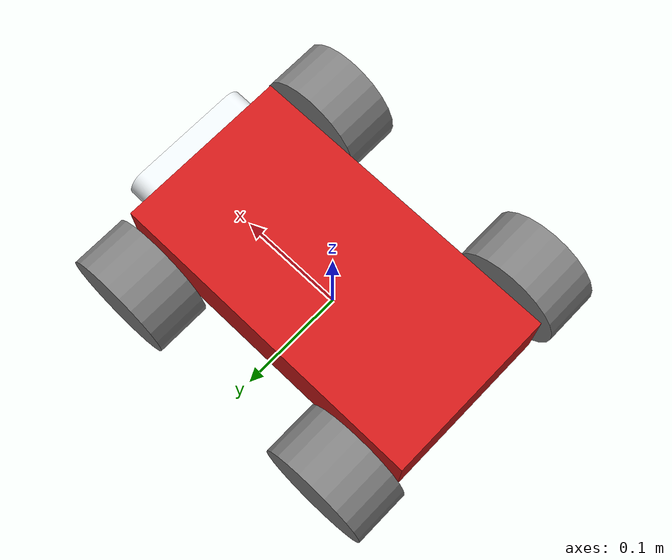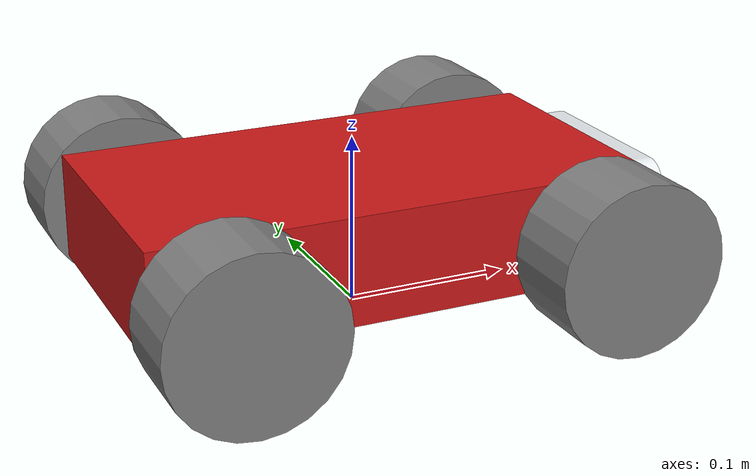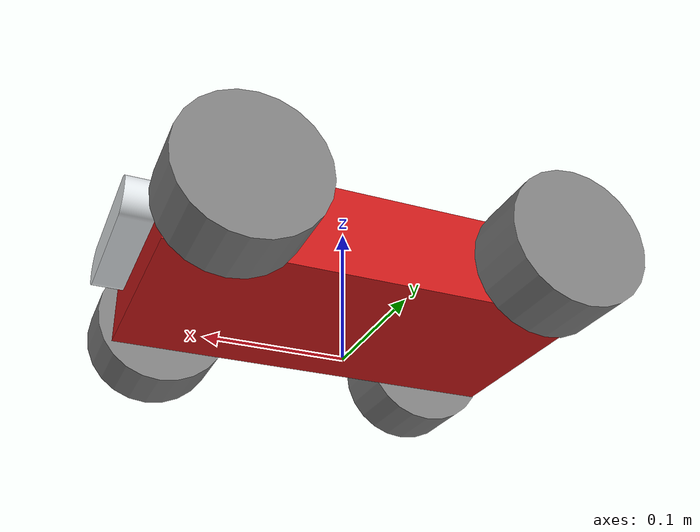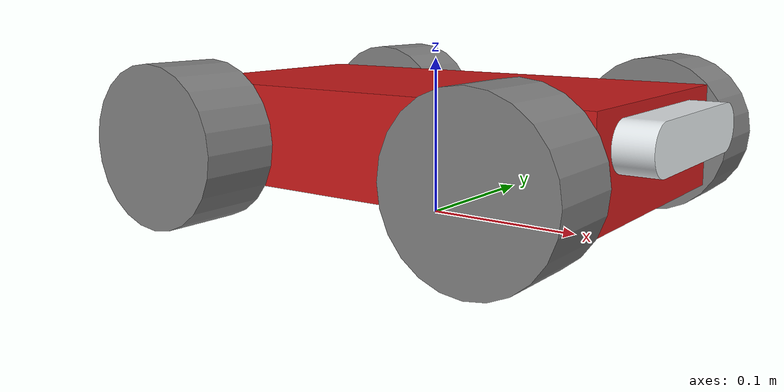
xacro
<?xml version="1.0"?>
<robot xmlns:xacro="http://ros.org/wiki/xacro" name="ackermann_chassis">

  <!-- ====== Geometry (edit as needed) ====== -->
  <xacro:property name="wheelbase"          value="0.22"/>     <!-- centre axis of front left wheel to centre axis of rear left wheel in meters (same parameter for rigth side) -->
  <xacro:property name="front_track"        value="0.2225"/> <!-- centre of front wheel to centre of right front wheel in meters -->
  <xacro:property name="rear_track"         value="0.2225"/> <!-- centre of rear wheel to centre of right rear wheel in meters -->
  <xacro:property name="front_wheel_radius" value="0.05"/>  <!-- radius of a wheel -->
  <xacro:property name="rear_wheel_radius"  value="0.05"/>  <!-- radius of a wheel -->

<!-- chassis parameters for RViz or Gazebo -->
  <xacro:property name="chassis_height"     value="0.063"/>     <!-- total height of chassis from ground to top in m -->
  <xacro:property name="clearance"          value="0.022"/>     <!-- total clearance chassis has from ground to beginning of chassis -->
  <xacro:property name="z_base"             value="0.0535"/>    <!-- clearance + chassis_height/2 -->

  <!-- Switch: fake hardware vs real Arduino bridge -->
  <xacro:arg name="use_fake_hardware" default="true"/>
  <xacro:arg name="serial_port"  default="/dev/ttyACM0"/>
  <xacro:arg name="serial_baud"  default="115200"/>

  <!-- ====== Wheel macro (visual + collision) ====== -->
  <xacro:macro name="wheel_link" params="name r">
  <link name="${name}">
    <inertial>
      <origin xyz="0 0 0"/>
      <mass value="0.5"/>
      <inertia ixx="0.001" iyy="0.001" izz="0.001" ixy="0" ixz="0" iyz="0"/>
    </inertial>

    <!-- Rotate cylinder so its axis (Z) becomes Y: roll = +90° -->
    <visual>
      <origin xyz="0 0 0" rpy="1.5708 0 0"/>  <!-- << correct -->
      <geometry><cylinder radius="${r}" length="0.05"/></geometry>
      <material name="grey"><color rgba="0.5 0.5 0.5 1.0"/></material>
    </visual>

    <collision>
      <origin xyz="0 0 0" rpy="1.5708 0 0"/>  <!-- << same -->
      <geometry><cylinder radius="${r}" length="0.05"/></geometry>
    </collision>
  </link>
</xacro:macro>

  <!-- ====== Base (chassis) ====== -->
  <link name="base_link">
    <inertial>
      <origin xyz="0 0 ${z_base}"/>
      <mass value="8.0"/>
      <inertia ixx="0.1" iyy="0.1" izz="0.1" ixy="0" ixz="0" iyz="0"/>
    </inertial>
    <visual>
      <origin xyz="0 0 ${z_base}" rpy="0 0 0"/>
      <geometry><box size="0.297 0.159 0.063"/></geometry>
      <material name="red"><color rgba="0.8 0.1 0.1 1.0"/></material>
    </visual>
    <collision>
      <origin xyz="0 0 ${z_base}" rpy="0 0 0"/>
      <geometry><box size="0.297 0.159 0.063"/></geometry>
    </collision>
  </link>

  <!-- ====== Wheel links ====== -->
  <xacro:wheel_link name="front_left_wheel"  r="${front_wheel_radius}"/>
  <xacro:wheel_link name="front_right_wheel" r="${front_wheel_radius}"/>
  <xacro:wheel_link name="rear_left_wheel"   r="${rear_wheel_radius}"/>
  <xacro:wheel_link name="rear_right_wheel"  r="${rear_wheel_radius}"/>

  <!-- ====== Realsense Camera link ====== -->
  <link name="camera_link">
   <visual>
     <origin
       xyz="0 0 0"
       rpy="0 0 0" />
     <geometry>
       <mesh
           filename="package://combined_robot_description/mesh/camera_mesh.stl"
           scale="0.001 0.001 0.001" />
     </geometry>
     <material
        name="">
      <color
           rgba="0.898039215686275 0.917647058823529 0.929411764705882 1" />
     </material>
   </visual>
     <collision>
       <origin
         xyz="0 0 0"
         rpy="0 0 0" />
       <geometry>
         <mesh
           filename="package://combined_robot_description/mesh/camera_mesh.stl"
           scale="0.001 0.001 0.001" />
      </geometry>
     </collision>
  </link>

  <!-- Optional optical frames (recommended) -->

  <!-- ====== Joints (x forward, y left, z up) ====== -->
  <!-- Both joints are still shown in RViz to accurately represent the chassis, however, one is a mimic to depict the tricycle setup -->
  <!-- Front steering (revolute about Z at wheel height) -->
  <joint name="front_left_steer_joint" type="revolute">
    <parent link="base_link"/>
    <child  link="front_left_wheel"/>
    <origin xyz="${wheelbase/2}  ${front_track/2}  ${front_wheel_radius}" rpy="0 0 0"/>
    <axis xyz="0 0 1"/>
    <!-- safe ±48° from HTS-20H (300–700 units) -->
    <limit lower="-0.838" upper="0.838" effort="5" velocity="1.5"/>
  </joint>

  <joint name="front_right_steer_joint" type="revolute">
    <mimic joint="front_left_steer_joint" multiplier="1.0" offset="0.0"/> <!-- This is added so the chassis acts as a single steering actuator with a mirrored visual steering -->
    <parent link="base_link"/>
    <child  link="front_right_wheel"/>
    <origin xyz="${wheelbase/2} -${front_track/2}  ${front_wheel_radius}" rpy="0 0 0"/>
    <axis xyz="0 0 1"/>
    <limit lower="-0.838" upper="0.838" effort="5" velocity="1.5"/>
  </joint>

  <!-- Rear drive (continuous spin about Y at wheel height) -->
  <joint name="rear_left_wheel_joint" type="continuous">
    <parent link="base_link"/>
    <child  link="rear_left_wheel"/>
    <origin xyz="-${wheelbase/2}  ${rear_track/2}  ${rear_wheel_radius}" rpy="0 0 0"/>
    <axis xyz="0 1 0"/>
    <limit effort="10" velocity="50"/>
  </joint>

  <joint name="rear_right_wheel_joint" type="continuous">
    <parent link="base_link"/>
    <child  link="rear_right_wheel"/>
    <origin xyz="-${wheelbase/2} -${rear_track/2}  ${rear_wheel_radius}" rpy="0 0 0"/>
    <axis xyz="0 1 0"/>
    <limit effort="10" velocity="50"/>
  </joint>

  <!-- ====== Realsense Camera Joint ====== -->
  <joint name="camera_mount_joint" type="fixed">
    <parent link="base_link"/>
    <child link="camera_link"/>
    <origin xyz="0.158 0 0.064" rpy="0 0 0"/>
  </joint>

  <!-- ====== Frame hierarchy ====== -->

  <!-- Optical frames (ROS standard orientation) -->

  <!-- ====== ros2_control unified system (fake vs real) ====== -->
  <ros2_control name="ackermann_serial" type="system">
    <hardware>
      <xacro:if value="$(arg use_fake_hardware)">
        <!-- Fake hardware for RViz/sim bring-up -->
        <plugin>fake_components/GenericSystem</plugin>
        <param name="mock_sensor_commands">true</param>
      </xacro:if>
      <xacro:unless value="$(arg use_fake_hardware)">
        <!-- Real hardware (Arduino bridge plugin) -->
        <plugin>ackermann_chassis/ArduinoSerialHardware</plugin>
        <param name="port">$(arg serial_port)</param>
        <param name="baud">$(arg serial_baud)</param>
        <param name="wheel_radius">${rear_wheel_radius}</param>
        <param name="max_mps">1.5</param>
        <param name="steer_limit_rad">0.837758</param>
      </xacro:unless>
    </hardware>

    <!-- Steering interfaces (position) -->
    <joint name="front_left_steer_joint">
      <command_interface name="position"/>
      <state_interface   name="position"/>
    </joint>
    <joint name="front_right_steer_joint"> <!-- No command interface to represent single steering actuator correctly -->
      <state_interface   name="position"/>
    </joint>

    <!-- Rear drive interfaces (velocity states only, to match plugin) -->
    <joint name="rear_left_wheel_joint">
      <command_interface name="velocity"/>
      <state_interface   name="position"/>
      <state_interface   name="velocity"/>
    </joint>
    <joint name="rear_right_wheel_joint">
      <command_interface name="velocity"/>
      <state_interface   name="position"/>
      <state_interface   name="velocity"/>
    </joint>
  </ros2_control>

</robot>
